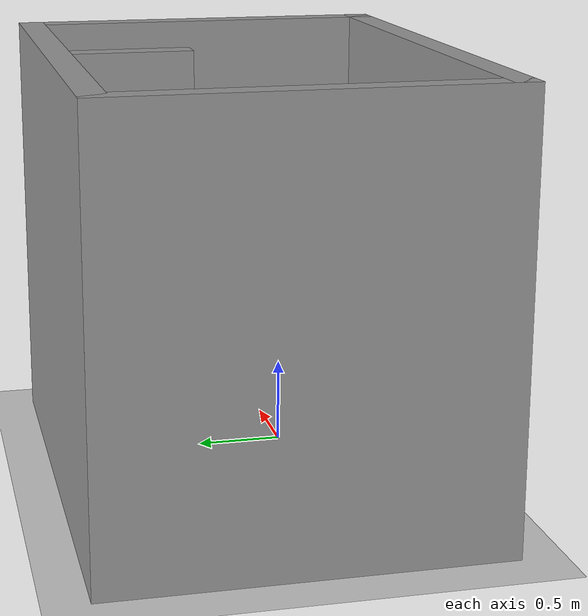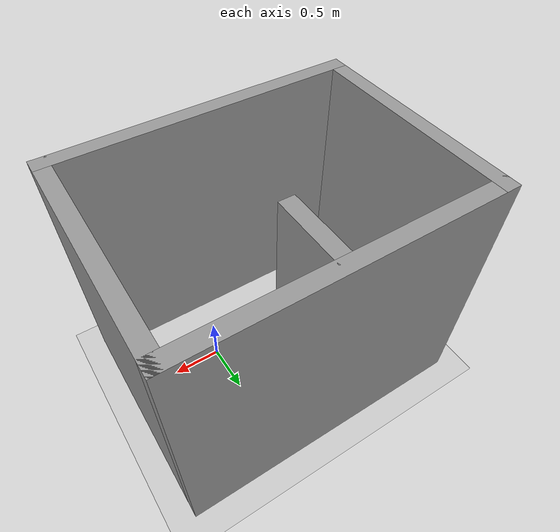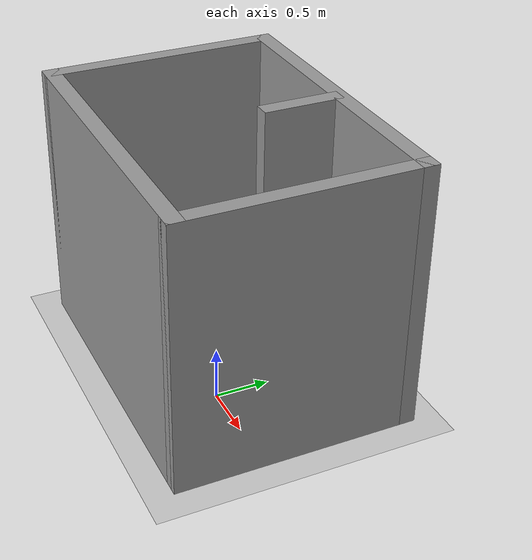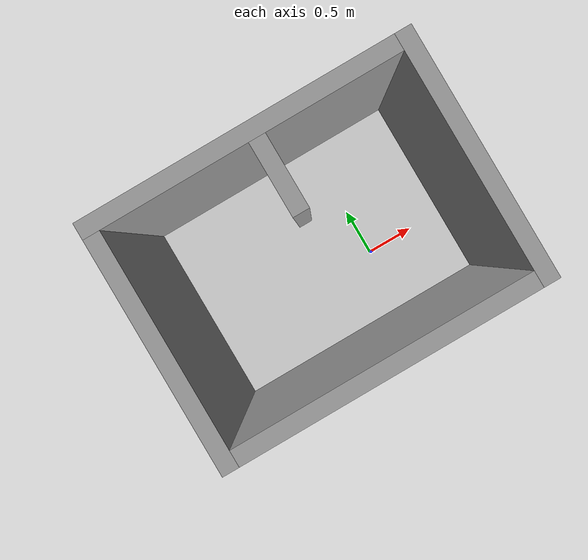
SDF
<sdf version="1.7">
 <world name="default">
  <light name="sun" type="directional">
   <pose>0 0 10 0 -0 0</pose>
   <diffuse>0.8 0.8 0.8 1</diffuse>
   <specular>0.2 0.2 0.2 1</specular>
   <attenuation>
    <range>1000</range>
    <constant>0.9</constant>
    <linear>0.01</linear>
    <quadratic>0.001</quadratic>
   </attenuation>
   <direction>-0.5 0.1 -0.9</direction>
   <spot><inner_angle>0</inner_angle><outer_angle>0</outer_angle><falloff>0</falloff></spot>
  </light>
  <model name="ground_plane">
   <static>1</static>
   <link name="link">
    <collision name="collision">
     <geometry><plane><normal>0 0 1</normal><size>100 100</size></plane></geometry>
     <surface><friction><ode><mu>100</mu><mu2>50</mu2></ode></friction></surface>
    </collision>
    <visual name="visual">
     <cast_shadows>0</cast_shadows>
     <geometry><plane><normal>0 0 1</normal><size>100 100</size></plane></geometry>
     <material>
      <script><uri>file://media/materials/scripts/gazebo.material</uri><name>Gazebo/Grey</name></script>
     </material>
    </visual>
   </link>
  </model>
  <gravity>0 0 -9.8</gravity>
  <magnetic_field>6e-06 2.3e-05 -4.2e-05</magnetic_field>
  <atmosphere type="adiabatic"/>
  <physics type="ode">
   <max_step_size>0.001</max_step_size>
   <real_time_factor>1</real_time_factor>
   <real_time_update_rate>1000</real_time_update_rate>
  </physics>
  <scene><ambient>0.4 0.4 0.4 1</ambient><background>0.7 0.7 0.7 1</background><shadows>1</shadows></scene>
  <spherical_coordinates>
   <surface_model>EARTH_WGS84</surface_model>
   <latitude_deg>0</latitude_deg>
   <longitude_deg>0</longitude_deg>
   <elevation>0</elevation>
   <heading_deg>0</heading_deg>
  </spherical_coordinates>
  <model name="Untitled3">
   <pose>0.448398 -0.072657 0 0 -0 0</pose>
   <link name="Wall_10">
    <collision name="Wall_10_Collision">
     <geometry><box><size>2.25 0.15 2.5</size></box></geometry>
     <pose>0 0 1.25 0 -0 0</pose>
    </collision>
    <visual name="Wall_10_Visual">
     <pose>0 0 1.25 0 -0 0</pose>
     <geometry><box><size>2.25 0.15 2.5</size></box></geometry>
     <material>
      <script><uri>file://media/materials/scripts/gazebo.material</uri><name>Gazebo/Grey</name></script>
      <ambient>1 1 1 1</ambient>
     </material>
     <meta><layer>0</layer></meta>
    </visual>
    <pose>0.488095 0.377435 0 0 -0 1.5708</pose>
   </link>
   <link name="Wall_11">
    <collision name="Wall_11_Collision">
     <geometry><box><size>3 0.15 2.5</size></box></geometry>
     <pose>0 0 1.25 0 -0 0</pose>
    </collision>
    <visual name="Wall_11_Visual">
     <pose>0 0 1.25 0 -0 0</pose>
     <geometry><box><size>3 0.15 2.5</size></box></geometry>
     <material>
      <script><uri>file://media/materials/scripts/gazebo.material</uri><name>Gazebo/Grey</name></script>
      <ambient>1 1 1 1</ambient>
     </material>
     <meta><layer>0</layer></meta>
    </visual>
    <pose>-0.936905 1.42744 0 0 -0 3.14159</pose>
   </link>
   <link name="Wall_12">
    <collision name="Wall_12_Collision">
     <geometry><box><size>2.25 0.15 2.5</size></box></geometry>
     <pose>0 0 1.25 0 -0 0</pose>
    </collision>
    <visual name="Wall_12_Visual">
     <pose>0 0 1.25 0 -0 0</pose>
     <geometry><box><size>2.25 0.15 2.5</size></box></geometry>
     <material>
      <script><uri>file://media/materials/scripts/gazebo.material</uri><name>Gazebo/Grey</name></script>
      <ambient>1 1 1 1</ambient>
     </material>
     <meta><layer>0</layer></meta>
    </visual>
    <pose>-2.36191 0.377435 0 0 -0 -1.5708</pose>
   </link>
   <link name="Wall_14">
    <collision name="Wall_14_Collision">
     <geometry><box><size>0.75 0.15 2.5</size></box></geometry>
     <pose>0 0 1.25 0 -0 0</pose>
    </collision>
    <visual name="Wall_14_Visual">
     <pose>0 0 1.25 0 -0 0</pose>
     <geometry><box><size>0.75 0.15 2.5</size></box></geometry>
     <material>
      <script><uri>file://media/materials/scripts/gazebo.material</uri><name>Gazebo/Grey</name></script>
      <ambient>1 1 1 1</ambient>
     </material>
     <meta><layer>0</layer></meta>
    </visual>
    <pose>-0.892967 1.06056 0 0 -0 -1.5708</pose>
   </link>
   <link name="Wall_7">
    <collision name="Wall_7_Collision">
     <geometry><box><size>3 0.15 2.5</size></box></geometry>
     <pose>0 0 1.25 0 -0 0</pose>
    </collision>
    <visual name="Wall_7_Visual">
     <pose>0 0 1.25 0 -0 0</pose>
     <geometry><box><size>3 0.15 2.5</size></box></geometry>
     <material>
      <script><uri>file://media/materials/scripts/gazebo.material</uri><name>Gazebo/Grey</name></script>
      <ambient>1 1 1 1</ambient>
     </material>
     <meta><layer>0</layer></meta>
    </visual>
    <pose>-0.936905 -0.672565 0 0 -0 0</pose>
   </link>
   <static>1</static>
  </model>
 </world>
</sdf>
